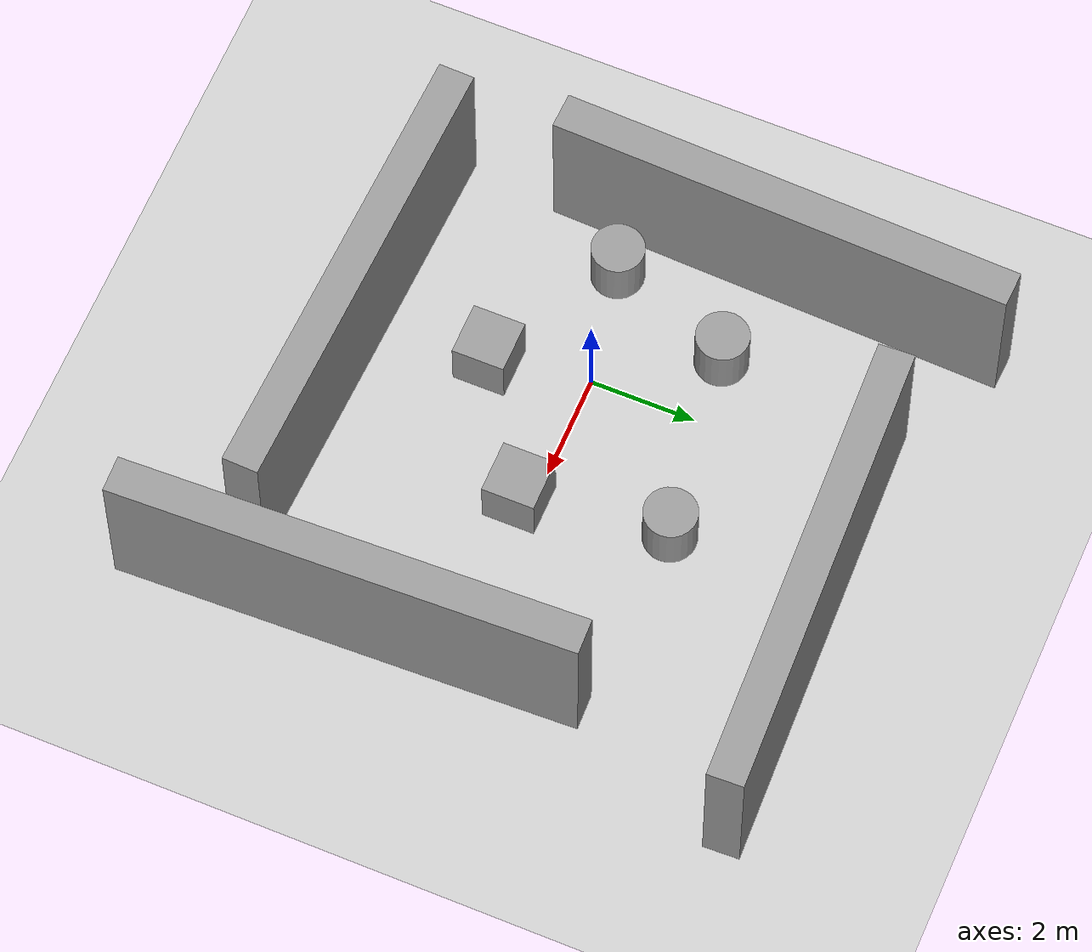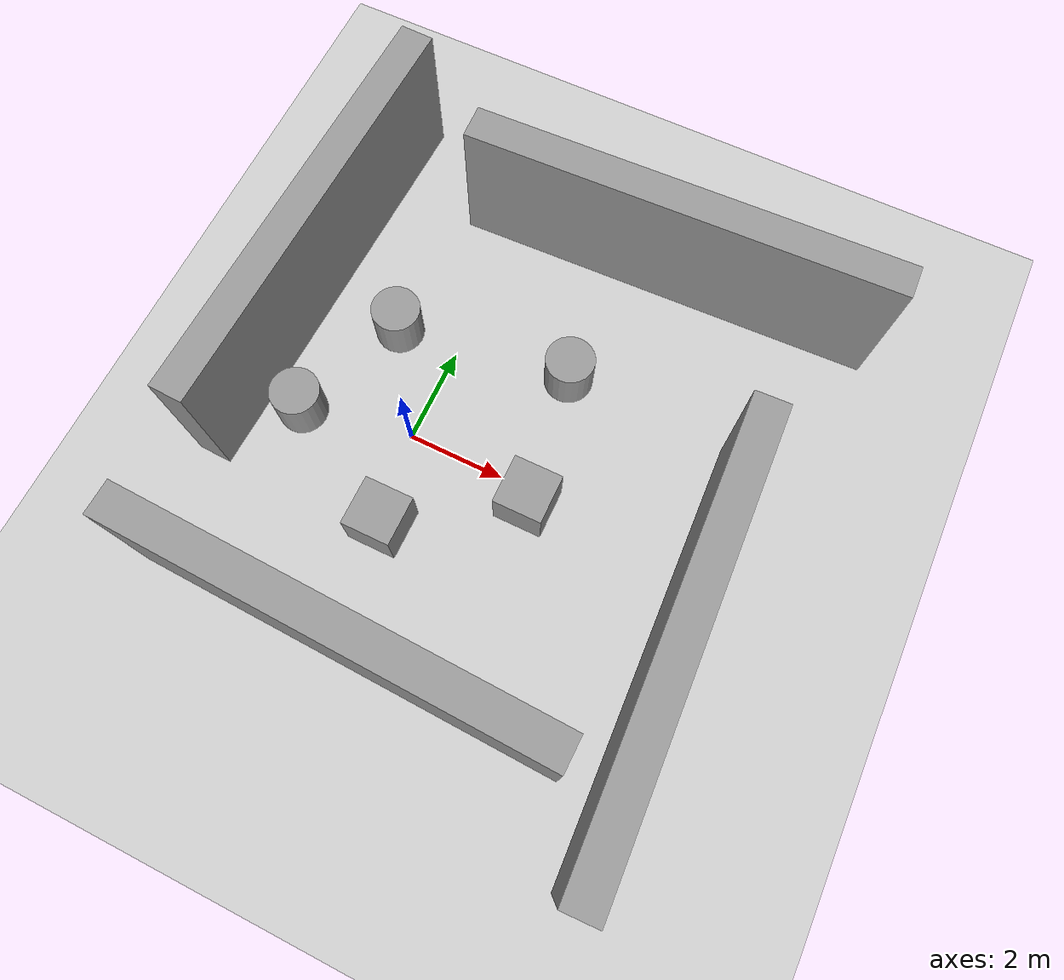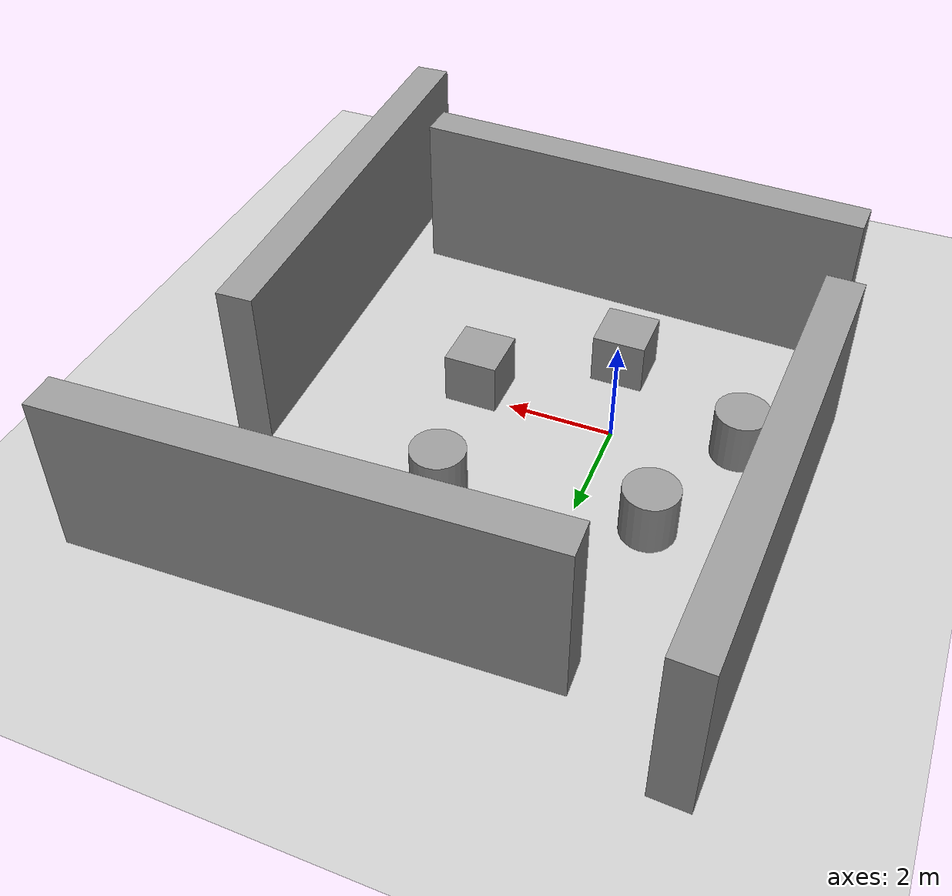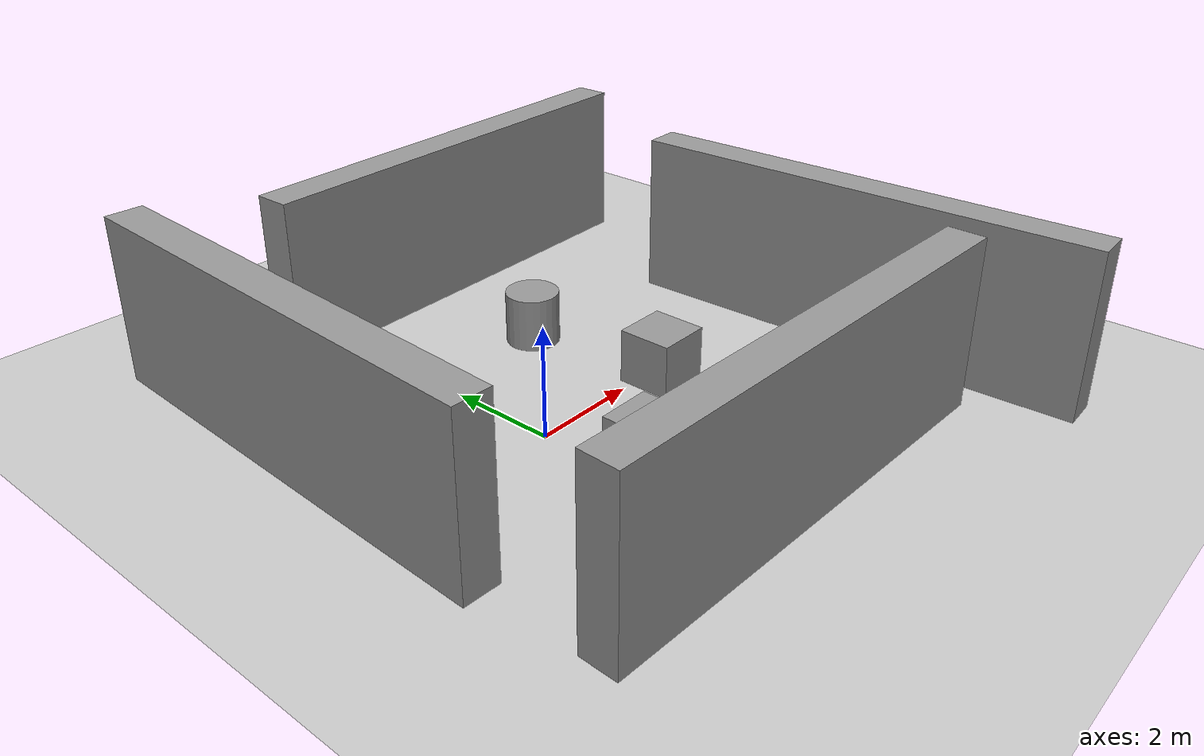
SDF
<sdf version="1.7">
 <world name="default">
  <light name="sun" type="directional">
   <pose>0 0 10 0 -0 0</pose>
   <diffuse>0.8 0.8 0.8 1</diffuse>
   <specular>0.2 0.2 0.2 1</specular>
   <attenuation>
    <range>1000</range>
    <constant>0.9</constant>
    <linear>0.01</linear>
    <quadratic>0.001</quadratic>
   </attenuation>
   <direction>-0.5 0.1 -0.9</direction>
   <spot><inner_angle>0</inner_angle><outer_angle>0</outer_angle><falloff>0</falloff></spot>
  </light>
  <model name="ground_plane">
   <static>1</static>
   <link name="link">
    <collision name="collision">
     <geometry><plane><normal>0 0 1</normal><size>100 100</size></plane></geometry>
     <surface><friction><ode><mu>100</mu><mu2>50</mu2></ode></friction></surface>
    </collision>
    <visual name="visual">
     <cast_shadows>0</cast_shadows>
     <geometry><plane><normal>0 0 1</normal><size>100 100</size></plane></geometry>
     <material>
      <script><uri>file://media/materials/scripts/gazebo.material</uri><name>Gazebo/Grey</name></script>
     </material>
    </visual>
   </link>
  </model>
  <gravity>0 0 -9.8</gravity>
  <magnetic_field>6e-06 2.3e-05 -4.2e-05</magnetic_field>
  <atmosphere type="adiabatic"/>
  <physics type="ode">
   <max_step_size>0.001</max_step_size>
   <real_time_factor>1</real_time_factor>
   <real_time_update_rate>1000</real_time_update_rate>
  </physics>
  <scene><ambient>0.4 0.4 0.4 1</ambient><background>0.7 0.7 0.7 1</background><shadows>1</shadows></scene>
  <audio><device>default</device></audio>
  <spherical_coordinates>
   <surface_model>EARTH_WGS84</surface_model>
   <latitude_deg>0</latitude_deg>
   <longitude_deg>0</longitude_deg>
   <elevation>0</elevation>
   <heading_deg>0</heading_deg>
  </spherical_coordinates>
  <model name="unit_box">
   <pose>3.2293 5.44648 1.54102 0.000106 0.002986 0.035394</pose>
   <link name="link">
    <inertial>
     <mass>1</mass>
     <inertia>
      <ixx>0.166667</ixx>
      <ixy>0</ixy>
      <ixz>0</ixz>
      <iyy>0.166667</iyy>
      <iyz>0</iyz>
      <izz>0.166667</izz>
     </inertia>
    </inertial>
    <collision name="collision"><geometry><box><size>8.75954 0.682675 3.10803</size></box></geometry></collision>
    <visual name="visual">
     <geometry><box><size>8.75954 0.682675 3.10803</size></box></geometry>
     <material>
      <script><name>Gazebo/Grey</name><uri>file://media/materials/scripts/gazebo.material</uri></script>
     </material>
    </visual>
   </link>
  </model>
  <model name="unit_box_clone">
   <pose>6.21359 -1.97111 1.54102 -0.000105 -0.002986 -1.53549</pose>
   <link name="link">
    <inertial>
     <mass>1</mass>
     <inertia>
      <ixx>0.166667</ixx>
      <ixy>0</ixy>
      <ixz>0</ixz>
      <iyy>0.166667</iyy>
      <iyz>0</iyz>
      <izz>0.166667</izz>
     </inertia>
    </inertial>
    <collision name="collision"><geometry><box><size>8.75954 0.682676 3.10803</size></box></geometry></collision>
    <visual name="visual">
     <geometry><box><size>8.75954 0.682676 3.10803</size></box></geometry>
     <material>
      <script><name>Gazebo/Grey</name><uri>file://media/materials/scripts/gazebo.material</uri></script>
     </material>
    </visual>
   </link>
  </model>
  <model name="unit_box_clone_clone">
   <pose>-3.20651 2.37359 1.54102 -0.000105 0.002986 -1.6061</pose>
   <link name="link">
    <inertial>
     <mass>1</mass>
     <inertia>
      <ixx>0.166667</ixx>
      <ixy>0</ixy>
      <ixz>0</ixz>
      <iyy>0.166667</iyy>
      <iyz>0</iyz>
      <izz>0.166667</izz>
     </inertia>
    </inertial>
    <collision name="collision"><geometry><box><size>8.75954 0.682676 3.10803</size></box></geometry></collision>
    <visual name="visual">
     <geometry><box><size>8.75954 0.682676 3.10803</size></box></geometry>
     <material>
      <script><name>Gazebo/Grey</name><uri>file://media/materials/scripts/gazebo.material</uri></script>
     </material>
    </visual>
   </link>
  </model>
  <model name="unit_box_clone_0">
   <pose>0.992542 -4.1959 1.54102 0.000106 -0.002986 -0.035395</pose>
   <link name="link">
    <inertial>
     <mass>1</mass>
     <inertia>
      <ixx>0.166667</ixx>
      <ixy>0</ixy>
      <ixz>0</ixz>
      <iyy>0.166667</iyy>
      <iyz>0</iyz>
      <izz>0.166667</izz>
     </inertia>
    </inertial>
    <collision name="collision"><geometry><box><size>8.75954 0.682676 3.10803</size></box></geometry></collision>
    <visual name="visual">
     <geometry><box><size>8.75954 0.682676 3.10803</size></box></geometry>
     <material>
      <script><name>Gazebo/Grey</name><uri>file://media/materials/scripts/gazebo.material</uri></script>
     </material>
    </visual>
   </link>
  </model>
  <model name="unit_cylinder">
   <pose>-1.30002 2.00488 0.499997 3e-06 -4e-06 0</pose>
   <link name="link">
    <inertial>
     <mass>1</mass>
     <inertia><ixx>0.145833</ixx><ixy>0</ixy><ixz>0</ixz><iyy>0.145833</iyy><iyz>0</iyz><izz>0.125</izz></inertia>
    </inertial>
    <collision name="collision">
     <geometry><cylinder><radius>0.5</radius><length>1</length></cylinder></geometry>
    </collision>
    <visual name="visual">
     <geometry><cylinder><radius>0.5</radius><length>1</length></cylinder></geometry>
     <material>
      <script><name>Gazebo/Grey</name><uri>file://media/materials/scripts/gazebo.material</uri></script>
     </material>
    </visual>
   </link>
  </model>
  <model name="unit_cylinder_0">
   <pose>-2.23744 -0.414185 0.499992 -3e-06 3e-06 0</pose>
   <link name="link">
    <inertial>
     <mass>1</mass>
     <inertia><ixx>0.145833</ixx><ixy>0</ixy><ixz>0</ixz><iyy>0.145833</iyy><iyz>0</iyz><izz>0.125</izz></inertia>
    </inertial>
    <collision name="collision">
     <geometry><cylinder><radius>0.5</radius><length>1</length></cylinder></geometry>
    </collision>
    <visual name="visual">
     <geometry><cylinder><radius>0.5</radius><length>1</length></cylinder></geometry>
     <material>
      <script><name>Gazebo/Grey</name><uri>file://media/materials/scripts/gazebo.material</uri></script>
     </material>
    </visual>
   </link>
  </model>
  <model name="unit_cylinder_1">
   <pose>2.32574 2.48567 0.499992 -3e-06 3e-06 0</pose>
   <link name="link">
    <inertial>
     <mass>1</mass>
     <inertia><ixx>0.145833</ixx><ixy>0</ixy><ixz>0</ixz><iyy>0.145833</iyy><iyz>0</iyz><izz>0.125</izz></inertia>
    </inertial>
    <collision name="collision">
     <geometry><cylinder><radius>0.5</radius><length>1</length></cylinder></geometry>
    </collision>
    <visual name="visual">
     <geometry><cylinder><radius>0.5</radius><length>1</length></cylinder></geometry>
     <material>
      <script><name>Gazebo/Grey</name><uri>file://media/materials/scripts/gazebo.material</uri></script>
     </material>
    </visual>
   </link>
  </model>
  <model name="unit_box_0">
   <pose>0.357053 -1.84774 0.499995 -1e-05 -0 0</pose>
   <link name="link">
    <inertial>
     <mass>1</mass>
     <inertia>
      <ixx>0.166667</ixx>
      <ixy>0</ixy>
      <ixz>0</ixz>
      <iyy>0.166667</iyy>
      <iyz>0</iyz>
      <izz>0.166667</izz>
     </inertia>
    </inertial>
    <collision name="collision"><geometry><box><size>1 1 1</size></box></geometry></collision>
    <visual name="visual">
     <geometry><box><size>1 1 1</size></box></geometry>
     <material>
      <script><name>Gazebo/Grey</name><uri>file://media/materials/scripts/gazebo.material</uri></script>
     </material>
    </visual>
   </link>
  </model>
  <model name="unit_box_1">
   <pose>2.70156 -0.269 0.5 0 -0 0</pose>
   <link name="link">
    <inertial>
     <mass>1</mass>
     <inertia>
      <ixx>0.166667</ixx>
      <ixy>0</ixy>
      <ixz>0</ixz>
      <iyy>0.166667</iyy>
      <iyz>0</iyz>
      <izz>0.166667</izz>
     </inertia>
    </inertial>
    <collision name="collision"><geometry><box><size>1 1 1</size></box></geometry></collision>
    <visual name="visual">
     <geometry><box><size>1 1 1</size></box></geometry>
     <material>
      <script><name>Gazebo/Grey</name><uri>file://media/materials/scripts/gazebo.material</uri></script>
     </material>
    </visual>
   </link>
  </model>
  <light name="user_point_light_0" type="point">
   <pose>-1.77333 3.1098 1 0 -0 0</pose>
   <diffuse>0.5 0.5 0.5 1</diffuse>
   <specular>0.1 0.1 0.1 1</specular>
   <attenuation>
    <range>20</range>
    <constant>0.5</constant>
    <linear>0.01</linear>
    <quadratic>0.001</quadratic>
   </attenuation>
   <cast_shadows>0</cast_shadows>
   <direction>0 0 -1</direction>
  </light>
 </world>
</sdf>
